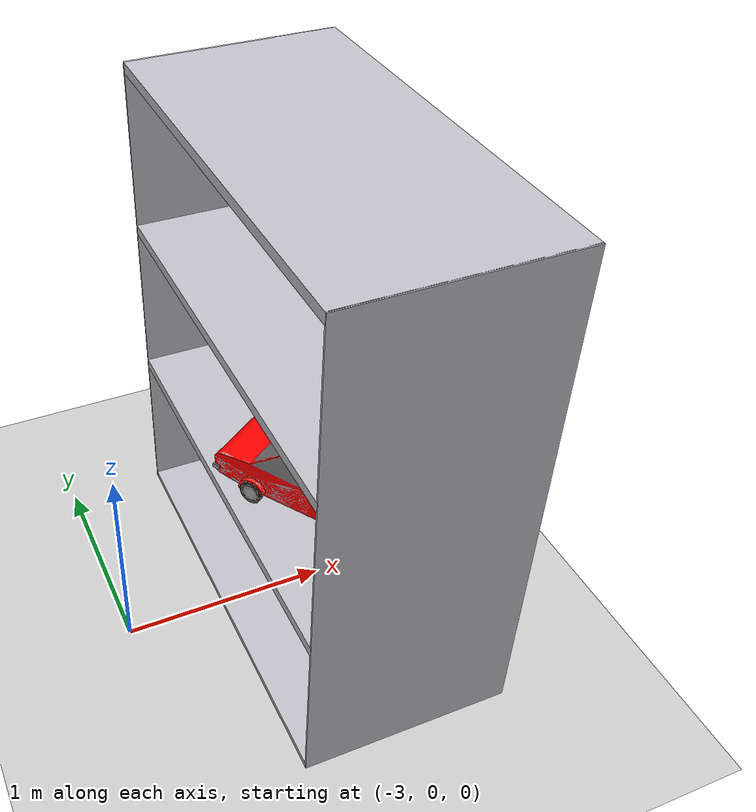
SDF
<sdf version="1.6">
 <world name="default">
  <light name="sun" type="directional">
   <pose>0 0 10 0 -0 0</pose>
   <diffuse>0.8 0.8 0.8 1</diffuse>
   <specular>0.1 0.1 0.1 1</specular>
   <attenuation>
    <range>1000</range>
    <constant>0.9</constant>
    <linear>0.01</linear>
    <quadratic>0.001</quadratic>
   </attenuation>
   <direction>-0.5 0.5 -1</direction>
  </light>
  <model name="ground_plane">
   <static>1</static>
   <link name="link">
    <collision name="collision">
     <geometry><plane><normal>0 0 1</normal><size>100 100</size></plane></geometry>
     <surface><friction><ode><mu>100</mu><mu2>50</mu2></ode></friction></surface>
    </collision>
    <visual name="visual">
     <cast_shadows>0</cast_shadows>
     <geometry><plane><normal>0 0 1</normal><size>100 100</size></plane></geometry>
     <material>
      <script><uri>file://media/materials/scripts/gazebo.material</uri><name>Gazebo/Grey</name></script>
     </material>
    </visual>
   </link>
  </model>
  <gravity>0 0 -9.8</gravity>
  <magnetic_field>6e-06 2.3e-05 -4.2e-05</magnetic_field>
  <atmosphere type="adiabatic"/>
  <physics name="default_physics" default="0" type="ode">
   <max_step_size>0.001</max_step_size>
   <real_time_factor>1</real_time_factor>
   <real_time_update_rate>1000</real_time_update_rate>
  </physics>
  <scene><ambient>0.4 0.4 0.4 1</ambient><background>0.7 0.7 0.7 1</background><shadows>0</shadows></scene>
  <spherical_coordinates>
   <surface_model>EARTH_WGS84</surface_model>
   <latitude_deg>0</latitude_deg>
   <longitude_deg>0</longitude_deg>
   <elevation>0</elevation>
   <heading_deg>0</heading_deg>
  </spherical_coordinates>
  <model name="3-shalf">
   <static>1</static>
   <link name="link">
    <collision name="shalf1">
     <geometry><box><size>2 1 0.05</size></box></geometry>
     <surface><friction><ode><mu>0.6</mu><mu2>0.6</mu2></ode></friction></surface>
    </collision>
    <visual name="shalf1_visual">
     <geometry><box><size>2 1 0.05</size></box></geometry>
     <material>
      <script><uri>file://media/materials/scripts/gazebo.material</uri><name>Gazebo/Silver</name></script>
     </material>
    </visual>
    <collision name="shalf2">
     <pose>0 0 0.8 0 -0 0</pose>
     <geometry><box><size>2 1 0.05</size></box></geometry>
     <surface><friction><ode><mu>0.6</mu><mu2>0.6</mu2></ode></friction></surface>
    </collision>
    <visual name="shalf2_visual">
     <pose>0 0 0.8 0 -0 0</pose>
     <geometry><box><size>2 1 0.05</size></box></geometry>
     <material>
      <script><uri>file://media/materials/scripts/gazebo.material</uri><name>Gazebo/Silver</name></script>
     </material>
    </visual>
    <collision name="shalf3">
     <pose>0 0 1.6 0 -0 0</pose>
     <geometry><box><size>2 1 0.05</size></box></geometry>
     <surface><friction><ode><mu>0.6</mu><mu2>0.6</mu2></ode></friction></surface>
    </collision>
    <visual name="shalf3_visual">
     <pose>0 0 1.6 0 -0 0</pose>
     <geometry><box><size>2 1 0.05</size></box></geometry>
     <material>
      <script><uri>file://media/materials/scripts/gazebo.material</uri><name>Gazebo/Silver</name></script>
     </material>
    </visual>
    <collision name="shalf4">
     <pose>0 0 2.4 0 -0 0</pose>
     <geometry><box><size>2 1 0.05</size></box></geometry>
     <surface><friction><ode><mu>0.6</mu><mu2>0.6</mu2></ode></friction></surface>
    </collision>
    <visual name="shalf4_visual">
     <pose>0 0 2.4 0 -0 0</pose>
     <geometry><box><size>2 1 0.05</size></box></geometry>
     <material>
      <script><uri>file://media/materials/scripts/gazebo.material</uri><name>Gazebo/Silver</name></script>
     </material>
    </visual>
    <collision name="shafl_leg1">
     <pose>-1 0 1.2 0 -0 1.57</pose>
     <geometry><box><size>1 0.01 2.45</size></box></geometry>
     <surface><friction><ode><mu>0.6</mu><mu2>0.6</mu2></ode></friction></surface>
    </collision>
    <visual name="shafl_leg1_visual">
     <pose>-1 0 1.2 0 -0 1.57</pose>
     <geometry><box><size>1 0.01 2.45</size></box></geometry>
     <material>
      <script><uri>file://media/materials/scripts/gazebo.material</uri><name>Gazebo/Silver</name></script>
     </material>
    </visual>
    <collision name="shafl_leg2">
     <pose>1 0 1.2 0 -0 1.57</pose>
     <geometry><box><size>1 0.01 2.45</size></box></geometry>
     <surface><friction><ode><mu>0.6</mu><mu2>0.6</mu2></ode></friction></surface>
    </collision>
    <visual name="shafl_leg2_visual">
     <pose>1 0 1.2 0 -0 1.57</pose>
     <geometry><box><size>1 0.01 2.45</size></box></geometry>
     <material>
      <script><uri>file://media/materials/scripts/gazebo.material</uri><name>Gazebo/Silver</name></script>
     </material>
    </visual>
   </link>
   <pose>-2.02314 -0.002371 0 0 -0 1.57</pose>
  </model>
  <model name="car">
   <static>1</static>
   <link name="link">
    <collision name="collision">
     <geometry><mesh><scale>0.2 0.2 0.2</scale><uri>model://car/meshes/model.dae</uri></mesh></geometry>
    </collision>
    <visual name="visual">
     <geometry><mesh><scale>0.2 0.2 0.2</scale><uri>model://car/meshes/model.dae</uri></mesh></geometry>
    </visual>
   </link>
   <pose>-1.56381 -0.649161 0.815 0 -0 2.15607</pose>
  </model>
  <audio><device>default</device></audio>
  <light name="user_point_light_0" type="point">
   <pose>-1.10215 2.00128 1 0 -0 0</pose>
   <diffuse>0.5 0.5 0.5 1</diffuse>
   <specular>0.1 0.1 0.1 1</specular>
   <attenuation>
    <range>20</range>
    <constant>0.5</constant>
    <linear>0.01</linear>
    <quadratic>0.001</quadratic>
   </attenuation>
   <cast_shadows>0</cast_shadows>
   <direction>0 0 -1</direction>
  </light>
  <model name="bottle1">
   <static>1</static>
   <link name="link">
    <collision name="collision">
     <geometry><mesh><scale>4.8 4.8 4.8</scale><uri>model://bottle1/meshes/model.dae</uri></mesh></geometry>
    </collision>
    <visual name="visual">
     <geometry><mesh><scale>4.8 4.8 4.8</scale><uri>model://bottle1/meshes/model.dae</uri></mesh></geometry>
    </visual>
   </link>
   <pose>-1.81253 0.705516 0.791879 0 -0 0</pose>
  </model>
 </world>
</sdf>
